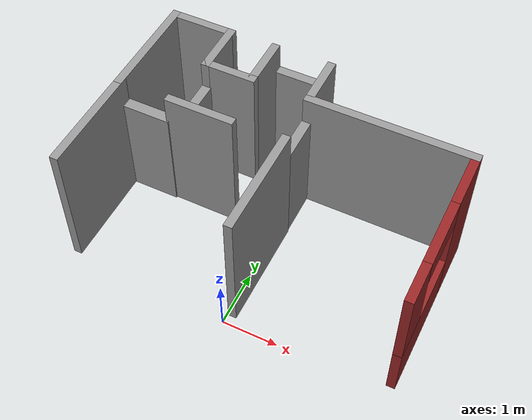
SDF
<sdf version="1.6">
 <model name="myroom">
  <link name="Door_1">
   <pose>-0.451398 3.90539 0 0 -0 0</pose>
   <visual name="Door_1_Visual">
    <pose>0 0 1 0 -0 0</pose>
    <geometry><box><size>0.9 0.17 2</size></box></geometry>
    <material>
     <script><uri>file://media/materials/scripts/gazebo.material</uri><name>Gazebo/Grey</name></script>
     <ambient>0.3 0.3 0.3 1</ambient>
     <diffuse>0.7 0.7 0.7 1</diffuse>
     <specular>0.01 0.01 0.01 1</specular>
     <emissive>0 0 0 1</emissive>
    </material>
   </visual>
   <collision name="Door_1_Collision">
    <pose>0 0 1 0 -0 0</pose>
    <geometry><box><size>0.9 0.17 2</size></box></geometry>
    <surface>
     <friction>
      <ode><mu>1</mu><mu2>1</mu2><fdir1>0 0 0</fdir1><slip1>0</slip1><slip2>0</slip2></ode>
      <torsional>
       <coefficient>1</coefficient>
       <patch_radius>0</patch_radius>
       <surface_radius>0</surface_radius>
       <use_patch_radius>1</use_patch_radius>
       <ode><slip>0</slip></ode>
      </torsional>
     </friction>
     <bounce><restitution_coefficient>0</restitution_coefficient><threshold>1e+06</threshold></bounce>
     <contact>
      <collide_without_contact>0</collide_without_contact>
      <collide_without_contact_bitmask>1</collide_without_contact_bitmask>
      <collide_bitmask>1</collide_bitmask>
      <ode>
       <soft_cfm>0</soft_cfm>
       <soft_erp>0.2</soft_erp>
       <kp>1e+13</kp>
       <kd>1</kd>
       <max_vel>0.01</max_vel>
       <min_depth>0</min_depth>
      </ode>
      <bullet>
       <split_impulse>1</split_impulse>
       <split_impulse_penetration_threshold>-0.01</split_impulse_penetration_threshold>
       <soft_cfm>0</soft_cfm>
       <soft_erp>0.2</soft_erp>
       <kp>1e+13</kp>
       <kd>1</kd>
      </bullet>
     </contact>
    </surface>
   </collision>
  </link>
  <link name="Door_3">
   <pose>-1.81536 2.52371 0 0 -0 1.571</pose>
   <visual name="Door_3_Visual">
    <pose>0 0 1 0 -0 0</pose>
    <geometry><box><size>0.9 0.17 2</size></box></geometry>
    <material>
     <script><uri>file://media/materials/scripts/gazebo.material</uri><name>Gazebo/Grey</name></script>
     <ambient>0.3 0.3 0.3 1</ambient>
     <diffuse>0.7 0.7 0.7 1</diffuse>
     <specular>0.01 0.01 0.01 1</specular>
     <emissive>0 0 0 1</emissive>
    </material>
   </visual>
   <collision name="Door_3_Collision">
    <pose>0 0 1 0 -0 0</pose>
    <geometry><box><size>0.9 0.17 2</size></box></geometry>
    <surface>
     <friction>
      <ode><mu>1</mu><mu2>1</mu2><fdir1>0 0 0</fdir1><slip1>0</slip1><slip2>0</slip2></ode>
      <torsional>
       <coefficient>1</coefficient>
       <patch_radius>0</patch_radius>
       <surface_radius>0</surface_radius>
       <use_patch_radius>1</use_patch_radius>
       <ode><slip>0</slip></ode>
      </torsional>
     </friction>
     <bounce><restitution_coefficient>0</restitution_coefficient><threshold>1e+06</threshold></bounce>
     <contact>
      <collide_without_contact>0</collide_without_contact>
      <collide_without_contact_bitmask>1</collide_without_contact_bitmask>
      <collide_bitmask>1</collide_bitmask>
      <ode>
       <soft_cfm>0</soft_cfm>
       <soft_erp>0.2</soft_erp>
       <kp>1e+13</kp>
       <kd>1</kd>
       <max_vel>0.01</max_vel>
       <min_depth>0</min_depth>
      </ode>
      <bullet>
       <split_impulse>1</split_impulse>
       <split_impulse_penetration_threshold>-0.01</split_impulse_penetration_threshold>
       <soft_cfm>0</soft_cfm>
       <soft_erp>0.2</soft_erp>
       <kp>1e+13</kp>
       <kd>1</kd>
      </bullet>
     </contact>
    </surface>
   </collision>
  </link>
  <link name="Door_4">
   <pose>-2.4307 2.04461 0 0 -0 0</pose>
   <visual name="Door_4_Visual">
    <pose>0 0 1 0 -0 0</pose>
    <geometry><box><size>0.877571 0.2 2</size></box></geometry>
    <material>
     <script><uri>file://media/materials/scripts/gazebo.material</uri><name>Gazebo/Grey</name></script>
     <ambient>0.3 0.3 0.3 1</ambient>
     <diffuse>0.7 0.7 0.7 1</diffuse>
     <specular>0.01 0.01 0.01 1</specular>
     <emissive>0 0 0 1</emissive>
    </material>
   </visual>
   <collision name="Door_4_Collision">
    <pose>0 0 1 0 -0 0</pose>
    <geometry><box><size>0.877571 0.2 2</size></box></geometry>
    <surface>
     <friction>
      <ode><mu>1</mu><mu2>1</mu2><fdir1>0 0 0</fdir1><slip1>0</slip1><slip2>0</slip2></ode>
      <torsional>
       <coefficient>1</coefficient>
       <patch_radius>0</patch_radius>
       <surface_radius>0</surface_radius>
       <use_patch_radius>1</use_patch_radius>
       <ode><slip>0</slip></ode>
      </torsional>
     </friction>
     <bounce><restitution_coefficient>0</restitution_coefficient><threshold>1e+06</threshold></bounce>
     <contact>
      <collide_without_contact>0</collide_without_contact>
      <collide_without_contact_bitmask>1</collide_without_contact_bitmask>
      <collide_bitmask>1</collide_bitmask>
      <ode>
       <soft_cfm>0</soft_cfm>
       <soft_erp>0.2</soft_erp>
       <kp>1e+13</kp>
       <kd>1</kd>
       <max_vel>0.01</max_vel>
       <min_depth>0</min_depth>
      </ode>
      <bullet>
       <split_impulse>1</split_impulse>
       <split_impulse_penetration_threshold>-0.01</split_impulse_penetration_threshold>
       <soft_cfm>0</soft_cfm>
       <soft_erp>0.2</soft_erp>
       <kp>1e+13</kp>
       <kd>1</kd>
      </bullet>
     </contact>
    </surface>
   </collision>
  </link>
  <link name="Door_5">
   <pose>0.069335 2.55262 0 0 -0 1.57282</pose>
   <visual name="Door_5_Visual">
    <pose>0 0 1 0 -0 0</pose>
    <geometry><box><size>0.9 0.17 2</size></box></geometry>
    <material>
     <script><uri>file://media/materials/scripts/gazebo.material</uri><name>Gazebo/Grey</name></script>
     <ambient>0.3 0.3 0.3 1</ambient>
     <diffuse>0.7 0.7 0.7 1</diffuse>
     <specular>0.01 0.01 0.01 1</specular>
     <emissive>0 0 0 1</emissive>
    </material>
   </visual>
   <collision name="Door_5_Collision">
    <pose>0 0 1 0 -0 0</pose>
    <geometry><box><size>0.9 0.17 2</size></box></geometry>
    <surface>
     <friction>
      <ode><mu>1</mu><mu2>1</mu2><fdir1>0 0 0</fdir1><slip1>0</slip1><slip2>0</slip2></ode>
      <torsional>
       <coefficient>1</coefficient>
       <patch_radius>0</patch_radius>
       <surface_radius>0</surface_radius>
       <use_patch_radius>1</use_patch_radius>
       <ode><slip>0</slip></ode>
      </torsional>
     </friction>
     <bounce><restitution_coefficient>0</restitution_coefficient><threshold>1e+06</threshold></bounce>
     <contact>
      <collide_without_contact>0</collide_without_contact>
      <collide_without_contact_bitmask>1</collide_without_contact_bitmask>
      <collide_bitmask>1</collide_bitmask>
      <ode>
       <soft_cfm>0</soft_cfm>
       <soft_erp>0.2</soft_erp>
       <kp>1e+13</kp>
       <kd>1</kd>
       <max_vel>0.01</max_vel>
       <min_depth>0</min_depth>
      </ode>
      <bullet>
       <split_impulse>1</split_impulse>
       <split_impulse_penetration_threshold>-0.01</split_impulse_penetration_threshold>
       <soft_cfm>0</soft_cfm>
       <soft_erp>0.2</soft_erp>
       <kp>1e+13</kp>
       <kd>1</kd>
      </bullet>
     </contact>
    </surface>
   </collision>
  </link>
  <link name="Wall_1">
   <pose>0.068128 3.47648 0 0 0 -1.5708</pose>
   <visual name="Wall_1_Visual">
    <pose>0 0 1.25 0 -0 0</pose>
    <geometry><box><size>1 0.15 2.5</size></box></geometry>
    <material>
     <script><uri>file://media/materials/scripts/gazebo.material</uri><name>Gazebo/Grey</name></script>
     <ambient>1 1 1 1</ambient>
     <diffuse>0.7 0.7 0.7 1</diffuse>
     <specular>0.01 0.01 0.01 1</specular>
     <emissive>0 0 0 1</emissive>
    </material>
    <meta><layer>0</layer></meta>
   </visual>
   <collision name="Wall_1_Collision">
    <pose>0 0 1.25 0 -0 0</pose>
    <geometry><box><size>1 0.15 2.5</size></box></geometry>
    <surface>
     <friction>
      <ode><mu>1</mu><mu2>1</mu2><fdir1>0 0 0</fdir1><slip1>0</slip1><slip2>0</slip2></ode>
      <torsional>
       <coefficient>1</coefficient>
       <patch_radius>0</patch_radius>
       <surface_radius>0</surface_radius>
       <use_patch_radius>1</use_patch_radius>
       <ode><slip>0</slip></ode>
      </torsional>
     </friction>
     <bounce><restitution_coefficient>0</restitution_coefficient><threshold>1e+06</threshold></bounce>
     <contact>
      <collide_without_contact>0</collide_without_contact>
      <collide_without_contact_bitmask>1</collide_without_contact_bitmask>
      <collide_bitmask>1</collide_bitmask>
      <ode>
       <soft_cfm>0</soft_cfm>
       <soft_erp>0.2</soft_erp>
       <kp>1e+13</kp>
       <kd>1</kd>
       <max_vel>0.01</max_vel>
       <min_depth>0</min_depth>
      </ode>
      <bullet>
       <split_impulse>1</split_impulse>
       <split_impulse_penetration_threshold>-0.01</split_impulse_penetration_threshold>
       <soft_cfm>0</soft_cfm>
       <soft_erp>0.2</soft_erp>
       <kp>1e+13</kp>
       <kd>1</kd>
      </bullet>
     </contact>
    </surface>
   </collision>
  </link>
  <link name="Wall_10">
   <pose>-1.82502 3.47364 0 0 -0 1.5708</pose>
   <visual name="Wall_10_Visual">
    <pose>0 0 1.25 0 -0 0</pose>
    <geometry><box><size>1 0.15 2.5</size></box></geometry>
    <material>
     <script><uri>file://media/materials/scripts/gazebo.material</uri><name>Gazebo/Grey</name></script>
     <ambient>1 1 1 1</ambient>
     <diffuse>0.7 0.7 0.7 1</diffuse>
     <specular>0.01 0.01 0.01 1</specular>
     <emissive>0 0 0 1</emissive>
    </material>
    <meta><layer>0</layer></meta>
   </visual>
   <collision name="Wall_10_Collision">
    <pose>0 0 1.25 0 -0 0</pose>
    <geometry><box><size>1 0.15 2.5</size></box></geometry>
    <surface>
     <friction>
      <ode><mu>1</mu><mu2>1</mu2><fdir1>0 0 0</fdir1><slip1>0</slip1><slip2>0</slip2></ode>
      <torsional>
       <coefficient>1</coefficient>
       <patch_radius>0</patch_radius>
       <surface_radius>0</surface_radius>
       <use_patch_radius>1</use_patch_radius>
       <ode><slip>0</slip></ode>
      </torsional>
     </friction>
     <bounce><restitution_coefficient>0</restitution_coefficient><threshold>1e+06</threshold></bounce>
     <contact>
      <collide_without_contact>0</collide_without_contact>
      <collide_without_contact_bitmask>1</collide_without_contact_bitmask>
      <collide_bitmask>1</collide_bitmask>
      <ode>
       <soft_cfm>0</soft_cfm>
       <soft_erp>0.2</soft_erp>
       <kp>1e+13</kp>
       <kd>1</kd>
       <max_vel>0.01</max_vel>
       <min_depth>0</min_depth>
      </ode>
      <bullet>
       <split_impulse>1</split_impulse>
       <split_impulse_penetration_threshold>-0.01</split_impulse_penetration_threshold>
       <soft_cfm>0</soft_cfm>
       <soft_erp>0.2</soft_erp>
       <kp>1e+13</kp>
       <kd>1</kd>
      </bullet>
     </contact>
    </surface>
   </collision>
  </link>
  <link name="Wall_14">
   <pose>-2.37502 3.89864 0 0 -0 3.14159</pose>
   <visual name="Wall_14_Visual">
    <pose>0 0 1.25 0 -0 0</pose>
    <geometry><box><size>1.25 0.15 2.5</size></box></geometry>
    <material>
     <script><uri>file://media/materials/scripts/gazebo.material</uri><name>Gazebo/Grey</name></script>
     <ambient>1 1 1 1</ambient>
     <diffuse>0.7 0.7 0.7 1</diffuse>
     <specular>0.01 0.01 0.01 1</specular>
     <emissive>0 0 0 1</emissive>
    </material>
    <meta><layer>0</layer></meta>
   </visual>
   <collision name="Wall_14_Collision">
    <pose>0 0 1.25 0 -0 0</pose>
    <geometry><box><size>1.25 0.15 2.5</size></box></geometry>
    <surface>
     <friction>
      <ode><mu>1</mu><mu2>1</mu2><fdir1>0 0 0</fdir1><slip1>0</slip1><slip2>0</slip2></ode>
      <torsional>
       <coefficient>1</coefficient>
       <patch_radius>0</patch_radius>
       <surface_radius>0</surface_radius>
       <use_patch_radius>1</use_patch_radius>
       <ode><slip>0</slip></ode>
      </torsional>
     </friction>
     <bounce><restitution_coefficient>0</restitution_coefficient><threshold>1e+06</threshold></bounce>
     <contact>
      <collide_without_contact>0</collide_without_contact>
      <collide_without_contact_bitmask>1</collide_without_contact_bitmask>
      <collide_bitmask>1</collide_bitmask>
      <ode>
       <soft_cfm>0</soft_cfm>
       <soft_erp>0.2</soft_erp>
       <kp>1e+13</kp>
       <kd>1</kd>
       <max_vel>0.01</max_vel>
       <min_depth>0</min_depth>
      </ode>
      <bullet>
       <split_impulse>1</split_impulse>
       <split_impulse_penetration_threshold>-0.01</split_impulse_penetration_threshold>
       <soft_cfm>0</soft_cfm>
       <soft_erp>0.2</soft_erp>
       <kp>1e+13</kp>
       <kd>1</kd>
      </bullet>
     </contact>
    </surface>
   </collision>
  </link>
  <link name="Wall_16">
   <pose>-2.92502 2.97364 0 0 0 -1.5708</pose>
   <visual name="Wall_16_Visual">
    <pose>0 0 1.25 0 -0 0</pose>
    <geometry><box><size>2 0.15 2.5</size></box></geometry>
    <material>
     <script><uri>file://media/materials/scripts/gazebo.material</uri><name>Gazebo/Grey</name></script>
     <ambient>1 1 1 1</ambient>
     <diffuse>0.7 0.7 0.7 1</diffuse>
     <specular>0.01 0.01 0.01 1</specular>
     <emissive>0 0 0 1</emissive>
    </material>
    <meta><layer>0</layer></meta>
   </visual>
   <collision name="Wall_16_Collision">
    <pose>0 0 1.25 0 -0 0</pose>
    <geometry><box><size>2 0.15 2.5</size></box></geometry>
    <surface>
     <friction>
      <ode><mu>1</mu><mu2>1</mu2><fdir1>0 0 0</fdir1><slip1>0</slip1><slip2>0</slip2></ode>
      <torsional>
       <coefficient>1</coefficient>
       <patch_radius>0</patch_radius>
       <surface_radius>0</surface_radius>
       <use_patch_radius>1</use_patch_radius>
       <ode><slip>0</slip></ode>
      </torsional>
     </friction>
     <bounce><restitution_coefficient>0</restitution_coefficient><threshold>1e+06</threshold></bounce>
     <contact>
      <collide_without_contact>0</collide_without_contact>
      <collide_without_contact_bitmask>1</collide_without_contact_bitmask>
      <collide_bitmask>1</collide_bitmask>
      <ode>
       <soft_cfm>0</soft_cfm>
       <soft_erp>0.2</soft_erp>
       <kp>1e+13</kp>
       <kd>1</kd>
       <max_vel>0.01</max_vel>
       <min_depth>0</min_depth>
      </ode>
      <bullet>
       <split_impulse>1</split_impulse>
       <split_impulse_penetration_threshold>-0.01</split_impulse_penetration_threshold>
       <soft_cfm>0</soft_cfm>
       <soft_erp>0.2</soft_erp>
       <kp>1e+13</kp>
       <kd>1</kd>
      </bullet>
     </contact>
    </surface>
   </collision>
  </link>
  <link name="Wall_20">
   <pose>-2.92502 1.12364 0 0 0 -1.5708</pose>
   <visual name="Wall_20_Visual">
    <pose>0 0 1.25 0 -0 0</pose>
    <geometry><box><size>2 0.15 2.5</size></box></geometry>
    <material>
     <script><uri>file://media/materials/scripts/gazebo.material</uri><name>Gazebo/Grey</name></script>
     <ambient>1 1 1 1</ambient>
     <diffuse>0.7 0.7 0.7 1</diffuse>
     <specular>0.01 0.01 0.01 1</specular>
     <emissive>0 0 0 1</emissive>
    </material>
    <meta><layer>0</layer></meta>
   </visual>
   <collision name="Wall_20_Collision">
    <pose>0 0 1.25 0 -0 0</pose>
    <geometry><box><size>2 0.15 2.5</size></box></geometry>
    <surface>
     <friction>
      <ode><mu>1</mu><mu2>1</mu2><fdir1>0 0 0</fdir1><slip1>0</slip1><slip2>0</slip2></ode>
      <torsional>
       <coefficient>1</coefficient>
       <patch_radius>0</patch_radius>
       <surface_radius>0</surface_radius>
       <use_patch_radius>1</use_patch_radius>
       <ode><slip>0</slip></ode>
      </torsional>
     </friction>
     <bounce><restitution_coefficient>0</restitution_coefficient><threshold>1e+06</threshold></bounce>
     <contact>
      <collide_without_contact>0</collide_without_contact>
      <collide_without_contact_bitmask>1</collide_without_contact_bitmask>
      <collide_bitmask>1</collide_bitmask>
      <ode>
       <soft_cfm>0</soft_cfm>
       <soft_erp>0.2</soft_erp>
       <kp>1e+13</kp>
       <kd>1</kd>
       <max_vel>0.01</max_vel>
       <min_depth>0</min_depth>
      </ode>
      <bullet>
       <split_impulse>1</split_impulse>
       <split_impulse_penetration_threshold>-0.01</split_impulse_penetration_threshold>
       <soft_cfm>0</soft_cfm>
       <soft_erp>0.2</soft_erp>
       <kp>1e+13</kp>
       <kd>1</kd>
      </bullet>
     </contact>
    </surface>
   </collision>
  </link>
  <link name="Wall_27">
   <pose>-1.40928 2.04626 0 0 -0 0</pose>
   <visual name="Wall_27_Visual">
    <pose>0 0 1.25 0 -0 0</pose>
    <geometry><box><size>1.25 0.15 2.5</size></box></geometry>
    <material>
     <script><uri>file://media/materials/scripts/gazebo.material</uri><name>Gazebo/Grey</name></script>
     <ambient>1 1 1 1</ambient>
     <diffuse>0.7 0.7 0.7 1</diffuse>
     <specular>0.01 0.01 0.01 1</specular>
     <emissive>0 0 0 1</emissive>
    </material>
    <meta><layer>0</layer></meta>
   </visual>
   <collision name="Wall_27_Collision">
    <pose>0 0 1.25 0 -0 0</pose>
    <geometry><box><size>1.25 0.15 2.5</size></box></geometry>
    <surface>
     <friction>
      <ode><mu>1</mu><mu2>1</mu2><fdir1>0 0 0</fdir1><slip1>0</slip1><slip2>0</slip2></ode>
      <torsional>
       <coefficient>1</coefficient>
       <patch_radius>0</patch_radius>
       <surface_radius>0</surface_radius>
       <use_patch_radius>1</use_patch_radius>
       <ode><slip>0</slip></ode>
      </torsional>
     </friction>
     <bounce><restitution_coefficient>0</restitution_coefficient><threshold>1e+06</threshold></bounce>
     <contact>
      <collide_without_contact>0</collide_without_contact>
      <collide_without_contact_bitmask>1</collide_without_contact_bitmask>
      <collide_bitmask>1</collide_bitmask>
      <ode>
       <soft_cfm>0</soft_cfm>
       <soft_erp>0.2</soft_erp>
       <kp>1e+13</kp>
       <kd>1</kd>
       <max_vel>0.01</max_vel>
       <min_depth>0</min_depth>
      </ode>
      <bullet>
       <split_impulse>1</split_impulse>
       <split_impulse_penetration_threshold>-0.01</split_impulse_penetration_threshold>
       <soft_cfm>0</soft_cfm>
       <soft_erp>0.2</soft_erp>
       <kp>1e+13</kp>
       <kd>1</kd>
      </bullet>
     </contact>
    </surface>
   </collision>
  </link>
  <link name="Wall_3">
   <pose>-0.975019 3.47364 0 0 0 -1.5708</pose>
   <visual name="Wall_3_Visual">
    <pose>0 0 1.25 0 -0 0</pose>
    <geometry><box><size>1 0.15 2.5</size></box></geometry>
    <material>
     <script><uri>file://media/materials/scripts/gazebo.material</uri><name>Gazebo/Grey</name></script>
     <ambient>1 1 1 1</ambient>
     <diffuse>0.7 0.7 0.7 1</diffuse>
     <specular>0.01 0.01 0.01 1</specular>
     <emissive>0 0 0 1</emissive>
    </material>
    <meta><layer>0</layer></meta>
   </visual>
   <collision name="Wall_3_Collision">
    <pose>0 0 1.25 0 -0 0</pose>
    <geometry><box><size>1 0.15 2.5</size></box></geometry>
    <surface>
     <friction>
      <ode><mu>1</mu><mu2>1</mu2><fdir1>0 0 0</fdir1><slip1>0</slip1><slip2>0</slip2></ode>
      <torsional>
       <coefficient>1</coefficient>
       <patch_radius>0</patch_radius>
       <surface_radius>0</surface_radius>
       <use_patch_radius>1</use_patch_radius>
       <ode><slip>0</slip></ode>
      </torsional>
     </friction>
     <bounce><restitution_coefficient>0</restitution_coefficient><threshold>1e+06</threshold></bounce>
     <contact>
      <collide_without_contact>0</collide_without_contact>
      <collide_without_contact_bitmask>1</collide_without_contact_bitmask>
      <collide_bitmask>1</collide_bitmask>
      <ode>
       <soft_cfm>0</soft_cfm>
       <soft_erp>0.2</soft_erp>
       <kp>1e+13</kp>
       <kd>1</kd>
       <max_vel>0.01</max_vel>
       <min_depth>0</min_depth>
      </ode>
      <bullet>
       <split_impulse>1</split_impulse>
       <split_impulse_penetration_threshold>-0.01</split_impulse_penetration_threshold>
       <soft_cfm>0</soft_cfm>
       <soft_erp>0.2</soft_erp>
       <kp>1e+13</kp>
       <kd>1</kd>
      </bullet>
     </contact>
    </surface>
   </collision>
  </link>
  <link name="Wall_31">
   <pose>0.092728 1.16063 0 0 0 -1.5708</pose>
   <visual name="Wall_31_Visual">
    <pose>0 0 1.25 0 -0 0</pose>
    <geometry><box><size>2 0.15 2.5</size></box></geometry>
    <material>
     <script><uri>file://media/materials/scripts/gazebo.material</uri><name>Gazebo/Grey</name></script>
     <ambient>1 1 1 1</ambient>
     <diffuse>0.7 0.7 0.7 1</diffuse>
     <specular>0.01 0.01 0.01 1</specular>
     <emissive>0 0 0 1</emissive>
    </material>
    <meta><layer>0</layer></meta>
   </visual>
   <collision name="Wall_31_Collision">
    <pose>0 0 1.25 0 -0 0</pose>
    <geometry><box><size>2 0.15 2.5</size></box></geometry>
    <surface>
     <friction>
      <ode><mu>1</mu><mu2>1</mu2><fdir1>0 0 0</fdir1><slip1>0</slip1><slip2>0</slip2></ode>
      <torsional>
       <coefficient>1</coefficient>
       <patch_radius>0</patch_radius>
       <surface_radius>0</surface_radius>
       <use_patch_radius>1</use_patch_radius>
       <ode><slip>0</slip></ode>
      </torsional>
     </friction>
     <bounce><restitution_coefficient>0</restitution_coefficient><threshold>1e+06</threshold></bounce>
     <contact>
      <collide_without_contact>0</collide_without_contact>
      <collide_without_contact_bitmask>1</collide_without_contact_bitmask>
      <collide_bitmask>1</collide_bitmask>
      <ode>
       <soft_cfm>0</soft_cfm>
       <soft_erp>0.2</soft_erp>
       <kp>1e+13</kp>
       <kd>1</kd>
       <max_vel>0.01</max_vel>
       <min_depth>0</min_depth>
      </ode>
      <bullet>
       <split_impulse>1</split_impulse>
       <split_impulse_penetration_threshold>-0.01</split_impulse_penetration_threshold>
       <soft_cfm>0</soft_cfm>
       <soft_erp>0.2</soft_erp>
       <kp>1e+13</kp>
       <kd>1</kd>
      </bullet>
     </contact>
    </surface>
   </collision>
  </link>
  <link name="Wall_34">
   <pose>1.49313 3.05148 0 0 -0 0</pose>
   <visual name="Wall_34_Visual">
    <pose>0 0 1.25 0 -0 0</pose>
    <geometry><box><size>3 0.15 2.5</size></box></geometry>
    <material>
     <script><uri>file://media/materials/scripts/gazebo.material</uri><name>Gazebo/Grey</name></script>
     <ambient>1 1 1 1</ambient>
     <diffuse>0.7 0.7 0.7 1</diffuse>
     <specular>0.01 0.01 0.01 1</specular>
     <emissive>0 0 0 1</emissive>
    </material>
    <meta><layer>0</layer></meta>
   </visual>
   <collision name="Wall_34_Collision">
    <pose>0 0 1.25 0 -0 0</pose>
    <geometry><box><size>3 0.15 2.5</size></box></geometry>
    <surface>
     <friction>
      <ode><mu>1</mu><mu2>1</mu2><fdir1>0 0 0</fdir1><slip1>0</slip1><slip2>0</slip2></ode>
      <torsional>
       <coefficient>1</coefficient>
       <patch_radius>0</patch_radius>
       <surface_radius>0</surface_radius>
       <use_patch_radius>1</use_patch_radius>
       <ode><slip>0</slip></ode>
      </torsional>
     </friction>
     <bounce><restitution_coefficient>0</restitution_coefficient><threshold>1e+06</threshold></bounce>
     <contact>
      <collide_without_contact>0</collide_without_contact>
      <collide_without_contact_bitmask>1</collide_without_contact_bitmask>
      <collide_bitmask>1</collide_bitmask>
      <ode>
       <soft_cfm>0</soft_cfm>
       <soft_erp>0.2</soft_erp>
       <kp>1e+13</kp>
       <kd>1</kd>
       <max_vel>0.01</max_vel>
       <min_depth>0</min_depth>
      </ode>
      <bullet>
       <split_impulse>1</split_impulse>
       <split_impulse_penetration_threshold>-0.01</split_impulse_penetration_threshold>
       <soft_cfm>0</soft_cfm>
       <soft_erp>0.2</soft_erp>
       <kp>1e+13</kp>
       <kd>1</kd>
      </bullet>
     </contact>
    </surface>
   </collision>
  </link>
  <link name="Wall_35">
   <pose>2.91813 1.62648 0 0 0 -1.5708</pose>
   <inertial>
    <mass>1</mass>
    <inertia><ixx>1</ixx><ixy>0</ixy><ixz>0</ixz><iyy>1</iyy><iyz>0</iyz><izz>1</izz></inertia>
   </inertial>
   <visual name="Wall_35_Visual_0">
    <pose>-0.967837 0 1.25 0 -0 0</pose>
    <geometry><box><size>1.06433 0.15 2.5</size></box></geometry>
    <material>
     <script><uri>file://media/materials/scripts/gazebo.material</uri><name>Gazebo/Grey</name></script>
     <ambient>0.6 0.15 0.15 1</ambient>
     <diffuse>0.7 0.7 0.7 1</diffuse>
     <specular>0.01 0.01 0.01 1</specular>
     <emissive>0 0 0 1</emissive>
     <shader type="vertex"><normal_map>__default__</normal_map></shader>
    </material>
    <meta><layer>0</layer></meta>
   </visual>
   <visual name="Wall_35_Visual_1">
    <pose>0.532163 0 0.5 0 -0 0</pose>
    <geometry><box><size>1.93567 0.15 1</size></box></geometry>
    <material>
     <script><uri>file://media/materials/scripts/gazebo.material</uri><name>Gazebo/Grey</name></script>
     <ambient>0.6 0.15 0.15 1</ambient>
     <diffuse>0.7 0.7 0.7 1</diffuse>
     <specular>0.01 0.01 0.01 1</specular>
     <emissive>0 0 0 1</emissive>
     <shader type="vertex"><normal_map>__default__</normal_map></shader>
    </material>
    <meta><layer>0</layer></meta>
   </visual>
   <visual name="Wall_35_Visual_2">
    <pose>1.13216 0 1.75 0 -0 0</pose>
    <geometry><box><size>0.735674 0.15 1.5</size></box></geometry>
    <material>
     <script><uri>file://media/materials/scripts/gazebo.material</uri><name>Gazebo/Grey</name></script>
     <ambient>0.6 0.15 0.15 1</ambient>
     <diffuse>0.7 0.7 0.7 1</diffuse>
     <specular>0.01 0.01 0.01 1</specular>
     <emissive>0 0 0 1</emissive>
     <shader type="vertex"><normal_map>__default__</normal_map></shader>
    </material>
    <meta><layer>0</layer></meta>
   </visual>
   <visual name="Wall_35_Visual_3">
    <pose>0.164326 0 2.25 0 -0 0</pose>
    <geometry><box><size>1.2 0.15 0.5</size></box></geometry>
    <material>
     <script><uri>file://media/materials/scripts/gazebo.material</uri><name>Gazebo/Grey</name></script>
     <ambient>0.6 0.15 0.15 1</ambient>
     <diffuse>0.7 0.7 0.7 1</diffuse>
     <specular>0.01 0.01 0.01 1</specular>
     <emissive>0 0 0 1</emissive>
     <shader type="vertex"><normal_map>__default__</normal_map></shader>
    </material>
    <meta><layer>0</layer></meta>
   </visual>
   <collision name="Wall_35_Collision_0">
    <pose>-0.967837 0 1.25 0 -0 0</pose>
    <geometry><box><size>1.06433 0.15 2.5</size></box></geometry>
    <surface>
     <friction>
      <ode><mu>1</mu><mu2>1</mu2><fdir1>0 0 0</fdir1><slip1>0</slip1><slip2>0</slip2></ode>
      <torsional>
       <coefficient>1</coefficient>
       <patch_radius>0</patch_radius>
       <surface_radius>0</surface_radius>
       <use_patch_radius>1</use_patch_radius>
       <ode><slip>0</slip></ode>
      </torsional>
     </friction>
     <bounce><restitution_coefficient>0</restitution_coefficient><threshold>1e+06</threshold></bounce>
     <contact>
      <collide_without_contact>0</collide_without_contact>
      <collide_without_contact_bitmask>1</collide_without_contact_bitmask>
      <collide_bitmask>1</collide_bitmask>
      <ode>
       <soft_cfm>0</soft_cfm>
       <soft_erp>0.2</soft_erp>
       <kp>1e+13</kp>
       <kd>1</kd>
       <max_vel>0.01</max_vel>
       <min_depth>0</min_depth>
      </ode>
      <bullet>
       <split_impulse>1</split_impulse>
       <split_impulse_penetration_threshold>-0.01</split_impulse_penetration_threshold>
       <soft_cfm>0</soft_cfm>
       <soft_erp>0.2</soft_erp>
       <kp>1e+13</kp>
       <kd>1</kd>
      </bullet>
     </contact>
    </surface>
   </collision>
   <collision name="Wall_35_Collision_1">
    <pose>0.532163 0 0.5 0 -0 0</pose>
    <geometry><box><size>1.93567 0.15 1</size></box></geometry>
    <surface>
     <friction>
      <ode><mu>1</mu><mu2>1</mu2><fdir1>0 0 0</fdir1><slip1>0</slip1><slip2>0</slip2></ode>
      <torsional>
       <coefficient>1</coefficient>
       <patch_radius>0</patch_radius>
       <surface_radius>0</surface_radius>
       <use_patch_radius>1</use_patch_radius>
       <ode><slip>0</slip></ode>
      </torsional>
     </friction>
     <bounce><restitution_coefficient>0</restitution_coefficient><threshold>1e+06</threshold></bounce>
     <contact>
      <collide_without_contact>0</collide_without_contact>
      <collide_without_contact_bitmask>1</collide_without_contact_bitmask>
      <collide_bitmask>1</collide_bitmask>
      <ode>
       <soft_cfm>0</soft_cfm>
       <soft_erp>0.2</soft_erp>
       <kp>1e+13</kp>
       <kd>1</kd>
       <max_vel>0.01</max_vel>
       <min_depth>0</min_depth>
      </ode>
      <bullet>
       <split_impulse>1</split_impulse>
       <split_impulse_penetration_threshold>-0.01</split_impulse_penetration_threshold>
       <soft_cfm>0</soft_cfm>
       <soft_erp>0.2</soft_erp>
       <kp>1e+13</kp>
       <kd>1</kd>
      </bullet>
     </contact>
    </surface>
   </collision>
   <collision name="Wall_35_Collision_2">
    <pose>1.13216 0 1.75 0 -0 0</pose>
    <geometry><box><size>0.735674 0.15 1.5</size></box></geometry>
    <surface>
     <friction>
      <ode><mu>1</mu><mu2>1</mu2><fdir1>0 0 0</fdir1><slip1>0</slip1><slip2>0</slip2></ode>
      <torsional>
       <coefficient>1</coefficient>
       <patch_radius>0</patch_radius>
       <surface_radius>0</surface_radius>
       <use_patch_radius>1</use_patch_radius>
       <ode><slip>0</slip></ode>
      </torsional>
     </friction>
     <bounce><restitution_coefficient>0</restitution_coefficient><threshold>1e+06</threshold></bounce>
     <contact>
      <collide_without_contact>0</collide_without_contact>
      <collide_without_contact_bitmask>1</collide_without_contact_bitmask>
      <collide_bitmask>1</collide_bitmask>
      <ode>
       <soft_cfm>0</soft_cfm>
       <soft_erp>0.2</soft_erp>
       <kp>1e+13</kp>
       <kd>1</kd>
       <max_vel>0.01</max_vel>
       <min_depth>0</min_depth>
      </ode>
      <bullet>
       <split_impulse>1</split_impulse>
       <split_impulse_penetration_threshold>-0.01</split_impulse_penetration_threshold>
       <soft_cfm>0</soft_cfm>
       <soft_erp>0.2</soft_erp>
       <kp>1e+13</kp>
       <kd>1</kd>
      </bullet>
     </contact>
    </surface>
   </collision>
   <collision name="Wall_35_Collision_3">
    <pose>0.164326 0 2.25 0 -0 0</pose>
    <geometry><box><size>1.2 0.15 0.5</size></box></geometry>
    <surface>
     <friction>
      <ode><mu>1</mu><mu2>1</mu2><fdir1>0 0 0</fdir1><slip1>0</slip1><slip2>0</slip2></ode>
      <torsional>
       <coefficient>1</coefficient>
       <patch_radius>0</patch_radius>
       <surface_radius>0</surface_radius>
       <use_patch_radius>1</use_patch_radius>
       <ode><slip>0</slip></ode>
      </torsional>
     </friction>
     <bounce><restitution_coefficient>0</restitution_coefficient><threshold>1e+06</threshold></bounce>
     <contact>
      <collide_without_contact>0</collide_without_contact>
      <collide_without_contact_bitmask>1</collide_without_contact_bitmask>
      <collide_bitmask>1</collide_bitmask>
      <ode>
       <soft_cfm>0</soft_cfm>
       <soft_erp>0.2</soft_erp>
       <kp>1e+13</kp>
       <kd>1</kd>
       <max_vel>0.01</max_vel>
       <min_depth>0</min_depth>
      </ode>
      <bullet>
       <split_impulse>1</split_impulse>
       <split_impulse_penetration_threshold>-0.01</split_impulse_penetration_threshold>
       <soft_cfm>0</soft_cfm>
       <soft_erp>0.2</soft_erp>
       <kp>1e+13</kp>
       <kd>1</kd>
      </bullet>
     </contact>
    </surface>
   </collision>
  </link>
  <link name="Wall_9">
   <pose>-1.40002 3.04864 0 0 -0 3.14159</pose>
   <visual name="Wall_9_Visual">
    <pose>0 0 1.25 0 -0 0</pose>
    <geometry><box><size>1 0.15 2.5</size></box></geometry>
    <material>
     <script><uri>file://media/materials/scripts/gazebo.material</uri><name>Gazebo/Grey</name></script>
     <ambient>1 1 1 1</ambient>
     <diffuse>0.7 0.7 0.7 1</diffuse>
     <specular>0.01 0.01 0.01 1</specular>
     <emissive>0 0 0 1</emissive>
    </material>
    <meta><layer>0</layer></meta>
   </visual>
   <collision name="Wall_9_Collision">
    <pose>0 0 1.25 0 -0 0</pose>
    <geometry><box><size>1 0.15 2.5</size></box></geometry>
    <surface>
     <friction>
      <ode><mu>1</mu><mu2>1</mu2><fdir1>0 0 0</fdir1><slip1>0</slip1><slip2>0</slip2></ode>
      <torsional>
       <coefficient>1</coefficient>
       <patch_radius>0</patch_radius>
       <surface_radius>0</surface_radius>
       <use_patch_radius>1</use_patch_radius>
       <ode><slip>0</slip></ode>
      </torsional>
     </friction>
     <bounce><restitution_coefficient>0</restitution_coefficient><threshold>1e+06</threshold></bounce>
     <contact>
      <collide_without_contact>0</collide_without_contact>
      <collide_without_contact_bitmask>1</collide_without_contact_bitmask>
      <collide_bitmask>1</collide_bitmask>
      <ode>
       <soft_cfm>0</soft_cfm>
       <soft_erp>0.2</soft_erp>
       <kp>1e+13</kp>
       <kd>1</kd>
       <max_vel>0.01</max_vel>
       <min_depth>0</min_depth>
      </ode>
      <bullet>
       <split_impulse>1</split_impulse>
       <split_impulse_penetration_threshold>-0.01</split_impulse_penetration_threshold>
       <soft_cfm>0</soft_cfm>
       <soft_erp>0.2</soft_erp>
       <kp>1e+13</kp>
       <kd>1</kd>
      </bullet>
     </contact>
    </surface>
   </collision>
  </link>
  <static>1</static>
 </model>
</sdf>
